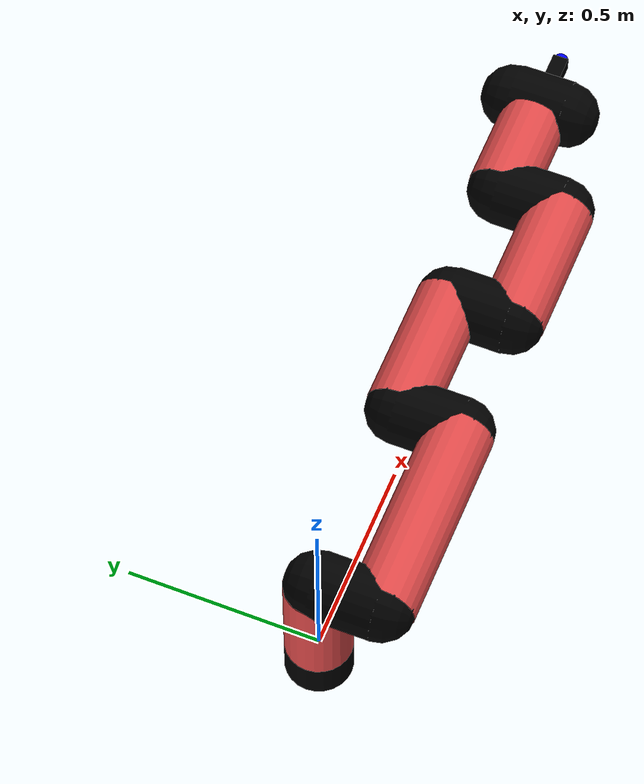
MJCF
<mujoco model="manipulator">
		<compiler angle="degree" coordinate="local" inertiafromgeom="auto" meshdir="meshes/"/>
		<option gravity="0 0 0" integrator="RK4" iterations="30" timestep="0.01"/>

		<default>
		<joint armature="1" limited="true" stiffness="10" damping="15" frictionloss="5.0"/>
		<geom conaffinity="1" condim="3" contype="1" friction=".5 .1 .1" margin="0.002"/>
		<motor ctrllimited="true"/>
		<position ctrllimited="true"/>
		</default>

		<asset>
		<texture builtin="gradient" height="100" rgb1="1.0 1.0 1.0" rgb2="1.0 1.0 1.0" type="skybox" width="100"/>
		<texture builtin="flat" height="32" name="arm_tex" rgb1="0.9 0.3 0.3" type="2d" width="32"/>
		<texture builtin="flat" height="32" name="gripper_tex" rgb1="0.0 0.0 0.0" type="cube" width="32"/>

		<material name="arm_mat" shininess="0.1" specular="0.1" texture="arm_tex"/>
		<material name="gripper_mat" shininess="1" specular="1" texture="gripper_tex"/>
		</asset>

		<worldbody>
		<light cutoff="45" diffuse=".8 .8 .8" dir="0 0.16 -1" directional="false" name="light" pos="0 -2.0 8.0" specular="0.3 0.3 0.3"/>

		<body name="base_link" pos="0 0 -0.1">
		<geom fromto="0 0 0 0 0 0.1" material="arm_mat" name="base_link" rgba="0.0 0.0 0.0 1" size="0.085" type="cylinder"/>
		</body>

		<body name="l1" pos="0 0 0">
<geom fromto="0 0 0 0 0 0.28" material="arm_mat" name="l1" rgba="0.9 0.3 0.3 1" size="0.085" type="cylinder"/>
<geom fromto="0 0 0.28 0 -0.16 0.28" material="arm_mat" name="l1_ex" rgba="0.0 0.0 0.0 1" size="0.085" type="capsule"/>
<joint axis="0 0 1" name="j1" pos="0 0 0" range="-90 90" damping="36.19" frictionloss="11.38"/>

<body name="l2" pos="0 -0.16 0.28">
<geom fromto="0 0 0 0.52 0 0" material="arm_mat" name="l2" rgba="0.9 0.3 0.3 1" size="0.085" type="cylinder"/>
<geom fromto="0.52 0 0 0.52 0.16 0" material="arm_mat" name="l2_ex" rgba="0.0 0.0 0.0 1" size="0.085" type="capsule"/>
<joint axis="0.0 1.0 0.0" name="j2" pos="0 0 0" range="-90 60" damping="25.21" frictionloss="11.38"/>

<body name="l3" pos="0.52 0.16 0">
<geom fromto="0 0 0 0.34 0 0" material="arm_mat" name="l3" rgba="0.9 0.3 0.3 1" size="0.085" type="cylinder"/>
<geom fromto="0.34 0 0 0.34 -0.16 0" material="arm_mat" name="l3_ex" rgba="0.0 0.0 0.0 1" size="0.085" type="capsule"/>
<joint axis="0.0 1.0 0.0" name="j3" pos="0 0 0" range="-30 60" damping="23.47" frictionloss="12.14"/>

<body name="l4" pos="0.34 -0.16 0">
<geom fromto="0 0 0 0.35 0 0" material="arm_mat" name="l4" rgba="0.9 0.3 0.3 1" size="0.085" type="cylinder"/>
<geom fromto="0.35 0 0 0.35 0.16 0" material="arm_mat" name="l4_ex" rgba="0.0 0.0 0.0 1" size="0.085" type="capsule"/>
<joint axis="0.0 1.0 0.0" name="j4" pos="0 0 0" range="-30 60" damping="29.12" frictionloss="11.94"/>

<body name="l5" pos="0.35 0.16 0">
<geom fromto="0 0 0 0.23 0 0" material="arm_mat" name="l5" rgba="0.9 0.3 0.3 1" size="0.085" type="cylinder"/>
<joint axis="0.0 1.0 0.0" name="j5" pos="0 0 0" range="-30 60" damping="29.52" frictionloss="12.15"/>

<body name="gripper" pos="0.23 0 0">
<geom fromto="0.05 -0.07 0 0.05 0.07 0" material="gripper_mat" name="gripper" rgba="0.0 0.0 0.0 1" size="0.085" type="capsule"/><joint axis="1 0 0" name="j6" pos="0 0 0" range="-90 90" damping="15" frictionloss="5.0"/><body name="finger" pos="0.1 0 0">
<geom fromto="0 0.0 0 0.1 0.0 0" material="gripper_mat" name="finger" rgba="0.0 0.0 0.0 1" size="0.020 0.06 0.06" type="box"/>
</body>
<site name="current" pos="0.2 0. 0.0" rgba="0. 0. 1.0 1" size="0.02" type="sphere"/>
</body>
</body>
</body>
</body>
</body>
</body>
</worldbody>
<actuator>
<motor ctrllimited="true" ctrlrange="-1.0 1.0" joint="j1" gear="66.94"/>
<motor ctrllimited="true" ctrlrange="-1.0 1.0" joint="j2" gear="82.26"/>
<motor ctrllimited="true" ctrlrange="-1.0 1.0" joint="j3" gear="69.19"/>
<motor ctrllimited="true" ctrlrange="-1.0 1.0" joint="j4" gear="64.07"/>
<motor ctrllimited="true" ctrlrange="-1.0 1.0" joint="j5" gear="78.61"/>
<motor ctrllimited="true" ctrlrange="-1.0 1.0" joint="j6" gear="80"/>
</actuator>
</mujoco>
